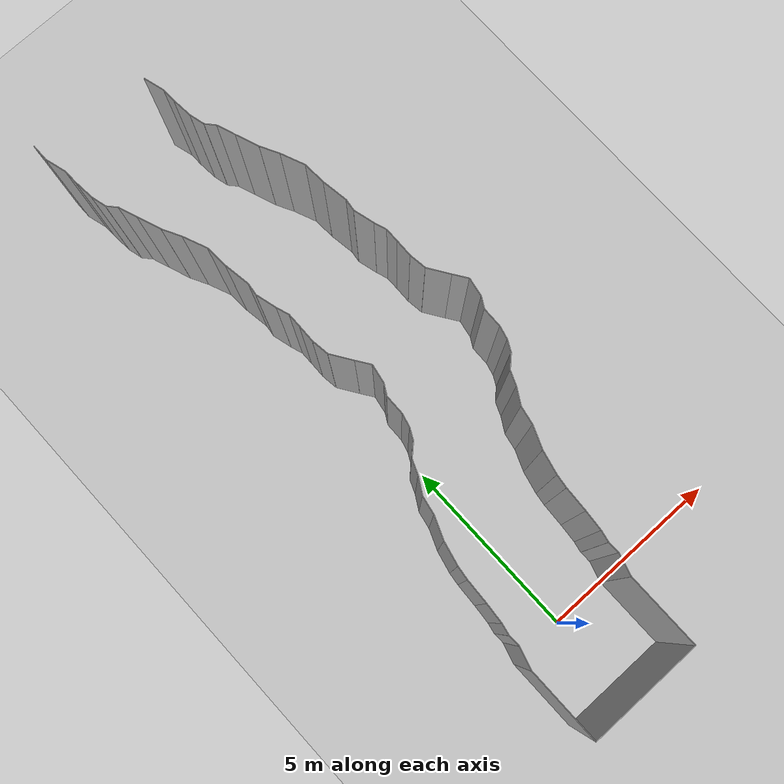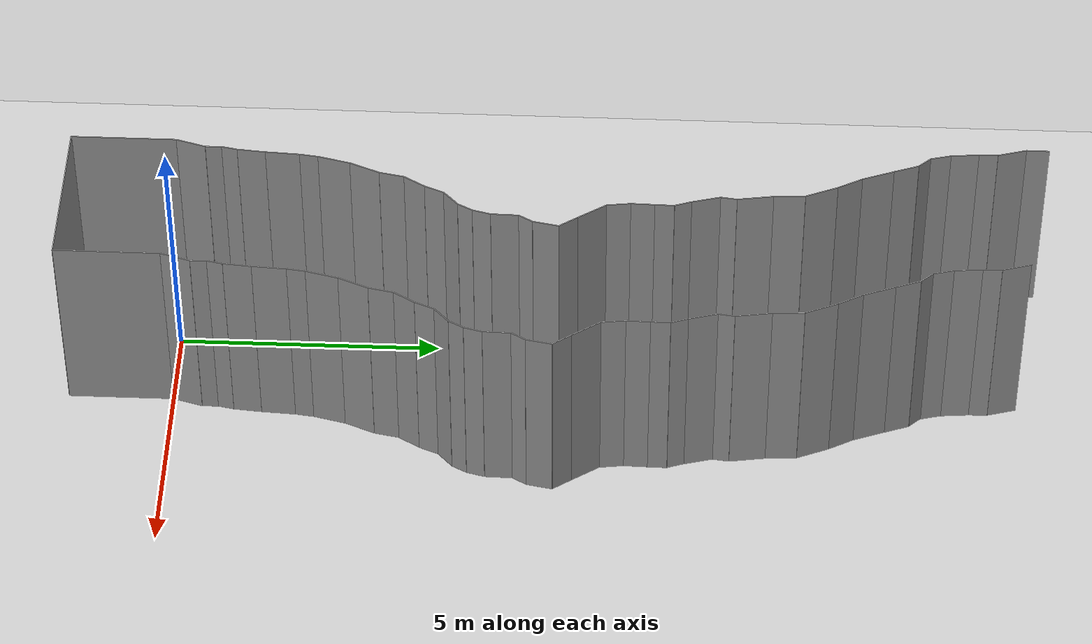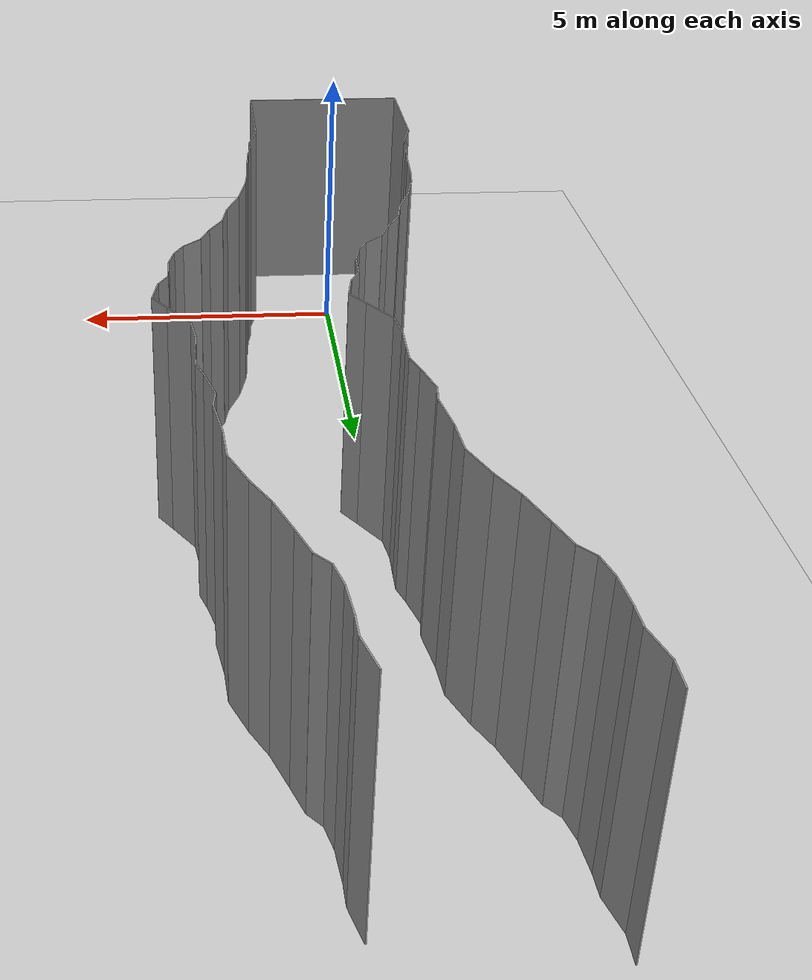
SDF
<sdf version="1.6">
 <world name="default">
  <model name="ground_plane">
   <static>1</static>
   <link name="link">
    <collision name="collision">
     <geometry><plane><normal>0 0 1</normal><size>200 200</size></plane></geometry>
     <surface><friction><ode><mu>100</mu><mu2>50</mu2></ode></friction></surface>
    </collision>
    <visual name="visual">
     <cast_shadows>0</cast_shadows>
     <geometry><plane><normal>0 0 1</normal><size>200 200</size></plane></geometry>
     <material>
      <script><uri>file://media/materials/scripts/gazebo.material</uri><name>Gazebo/Grey</name></script>
     </material>
    </visual>
   </link>
   <pose>0 100 0 0 -0 0</pose>
  </model>
  <model name="wall_back">
   <static>1</static>
   <pose>0.0 -2 2 0.0 0 0.0</pose>
   <link name="link">
    <collision name="collision"><geometry><box><size>3 0.02 4</size></box></geometry></collision>
    <visual name="visual">
     <material>
      <script><name>Gazebo/Grey</name><uri>file://media/materials/scripts/gazebo.material</uri></script>
     </material>
     <geometry><box><size>3 0.02 4</size></box></geometry>
    </visual>
   </link>
  </model>
  <model name="wall_left">
   <static>1</static>
   <pose>1.5 -1 2 0 0 0.00</pose>
   <link name="link">
    <collision name="collision"><geometry><box><size>0.02 2 4</size></box></geometry></collision>
    <visual name="visual">
     <material>
      <script><name>Gazebo/Grey</name><uri>file://media/materials/scripts/gazebo.material</uri></script>
     </material>
     <geometry><box><size>0.02 2 4</size></box></geometry>
    </visual>
   </link>
  </model>
  <model name="wall_right">
   <static>1</static>
   <pose>-1.5 -1 2 0 0 0.00</pose>
   <link name="link">
    <collision name="collision"><geometry><box><size>0.02 2 4</size></box></geometry></collision>
    <visual name="visual">
     <material>
      <script><name>Gazebo/Grey</name><uri>file://media/materials/scripts/gazebo.material</uri></script>
     </material>
     <geometry><box><size>0.02 2 4</size></box></geometry>
    </visual>
   </link>
  </model>
  <model name="wall_0">
   <static>1</static>
   <pose>-1.418720931866029 0.2836292645019407 2 0 0 -0.2790887543441646</pose>
   <link name="link">
    <collision name="collision"><geometry><box><size>0.02 0.590090998402 4</size></box></geometry></collision>
    <visual name="visual">
     <material>
      <script><name>Gazebo/Grey</name><uri>file://media/materials/scripts/gazebo.material</uri></script>
     </material>
     <geometry><box><size>0.02 0.590090998402 4</size></box></geometry>
    </visual>
   </link>
  </model>
  <model name="wall_1">
   <static>1</static>
   <pose>1.581279068133971 0.2836292645019407 2 0 0 -0.2790887543441646</pose>
   <link name="link">
    <collision name="collision"><geometry><box><size>0.02 0.590090998402 4</size></box></geometry></collision>
    <visual name="visual">
     <material>
      <script><name>Gazebo/Grey</name><uri>file://media/materials/scripts/gazebo.material</uri></script>
     </material>
     <geometry><box><size>0.02 0.590090998402 4</size></box></geometry>
    </visual>
   </link>
  </model>
  <model name="wall_2">
   <static>1</static>
   <pose>-1.341242303199237 0.7211256952658965 2 0 0 0.0246944621426619</pose>
   <link name="link">
    <collision name="collision"><geometry><box><size>0.02 0.307828187102 4</size></box></geometry></collision>
    <visual name="visual">
     <material>
      <script><name>Gazebo/Grey</name><uri>file://media/materials/scripts/gazebo.material</uri></script>
     </material>
     <geometry><box><size>0.02 0.307828187102 4</size></box></geometry>
    </visual>
   </link>
  </model>
  <model name="wall_3">
   <static>1</static>
   <pose>1.658757696800763 0.7211256952658965 2 0 0 0.0246944621426619</pose>
   <link name="link">
    <collision name="collision"><geometry><box><size>0.02 0.307828187102 4</size></box></geometry></collision>
    <visual name="visual">
     <material>
      <script><name>Gazebo/Grey</name><uri>file://media/materials/scripts/gazebo.material</uri></script>
     </material>
     <geometry><box><size>0.02 0.307828187102 4</size></box></geometry>
    </visual>
   </link>
  </model>
  <model name="wall_4">
   <static>1</static>
   <pose>-1.3144496636133118 1.0261300958018456 2 0 0 -0.19972063417465227</pose>
   <link name="link">
    <collision name="collision"><geometry><box><size>0.02 0.308404929078 4</size></box></geometry></collision>
    <visual name="visual">
     <material>
      <script><name>Gazebo/Grey</name><uri>file://media/materials/scripts/gazebo.material</uri></script>
     </material>
     <geometry><box><size>0.02 0.308404929078 4</size></box></geometry>
    </visual>
   </link>
  </model>
  <model name="wall_5">
   <static>1</static>
   <pose>1.6855503363866882 1.0261300958018456 2 0 0 -0.19972063417465227</pose>
   <link name="link">
    <collision name="collision"><geometry><box><size>0.02 0.308404929078 4</size></box></geometry></collision>
    <visual name="visual">
     <material>
      <script><name>Gazebo/Grey</name><uri>file://media/materials/scripts/gazebo.material</uri></script>
     </material>
     <geometry><box><size>0.02 0.308404929078 4</size></box></geometry>
    </visual>
   </link>
  </model>
  <model name="wall_6">
   <static>1</static>
   <pose>-1.2604508088802011 1.445763980237036 2 0 0 -0.08695362151301869</pose>
   <link name="link">
    <collision name="collision"><geometry><box><size>0.02 0.539029800597 4</size></box></geometry></collision>
    <visual name="visual">
     <material>
      <script><name>Gazebo/Grey</name><uri>file://media/materials/scripts/gazebo.material</uri></script>
     </material>
     <geometry><box><size>0.02 0.539029800597 4</size></box></geometry>
    </visual>
   </link>
  </model>
  <model name="wall_7">
   <static>1</static>
   <pose>1.7395491911197989 1.445763980237036 2 0 0 -0.08695362151301869</pose>
   <link name="link">
    <collision name="collision"><geometry><box><size>0.02 0.539029800597 4</size></box></geometry></collision>
    <visual name="visual">
     <material>
      <script><name>Gazebo/Grey</name><uri>file://media/materials/scripts/gazebo.material</uri></script>
     </material>
     <geometry><box><size>0.02 0.539029800597 4</size></box></geometry>
    </visual>
   </link>
  </model>
  <model name="wall_8">
   <static>1</static>
   <pose>-1.2187104476934287 2.040100968171722 2 0 0 -0.05620934549464021</pose>
   <link name="link">
    <collision name="collision"><geometry><box><size>0.02 0.652711522025 4</size></box></geometry></collision>
    <visual name="visual">
     <material>
      <script><name>Gazebo/Grey</name><uri>file://media/materials/scripts/gazebo.material</uri></script>
     </material>
     <geometry><box><size>0.02 0.652711522025 4</size></box></geometry>
    </visual>
   </link>
  </model>
  <model name="wall_9">
   <static>1</static>
   <pose>1.7812895523065713 2.040100968171722 2 0 0 -0.05620934549464021</pose>
   <link name="link">
    <collision name="collision"><geometry><box><size>0.02 0.652711522025 4</size></box></geometry></collision>
    <visual name="visual">
     <material>
      <script><name>Gazebo/Grey</name><uri>file://media/materials/scripts/gazebo.material</uri></script>
     </material>
     <geometry><box><size>0.02 0.652711522025 4</size></box></geometry>
    </visual>
   </link>
  </model>
  <model name="wall_10">
   <static>1</static>
   <pose>-1.1776914019775158 2.542547777089179 2 0 0 -0.12774689212215662</pose>
   <link name="link">
    <collision name="collision"><geometry><box><size>0.02 0.356114758947 4</size></box></geometry></collision>
    <visual name="visual">
     <material>
      <script><name>Gazebo/Grey</name><uri>file://media/materials/scripts/gazebo.material</uri></script>
     </material>
     <geometry><box><size>0.02 0.356114758947 4</size></box></geometry>
    </visual>
   </link>
  </model>
  <model name="wall_11">
   <static>1</static>
   <pose>1.8223085980224842 2.542547777089179 2 0 0 -0.12774689212215662</pose>
   <link name="link">
    <collision name="collision"><geometry><box><size>0.02 0.356114758947 4</size></box></geometry></collision>
    <visual name="visual">
     <material>
      <script><name>Gazebo/Grey</name><uri>file://media/materials/scripts/gazebo.material</uri></script>
     </material>
     <geometry><box><size>0.02 0.356114758947 4</size></box></geometry>
    </visual>
   </link>
  </model>
  <model name="wall_12">
   <static>1</static>
   <pose>-1.081717537705951 3.026090564731109 2 0 0 -0.23438848789214636</pose>
   <link name="link">
    <collision name="collision"><geometry><box><size>0.02 0.631129904641 4</size></box></geometry></collision>
    <visual name="visual">
     <material>
      <script><name>Gazebo/Grey</name><uri>file://media/materials/scripts/gazebo.material</uri></script>
     </material>
     <geometry><box><size>0.02 0.631129904641 4</size></box></geometry>
    </visual>
   </link>
  </model>
  <model name="wall_13">
   <static>1</static>
   <pose>1.918282462294049 3.026090564731109 2 0 0 -0.23438848789214636</pose>
   <link name="link">
    <collision name="collision"><geometry><box><size>0.02 0.631129904641 4</size></box></geometry></collision>
    <visual name="visual">
     <material>
      <script><name>Gazebo/Grey</name><uri>file://media/materials/scripts/gazebo.material</uri></script>
     </material>
     <geometry><box><size>0.02 0.631129904641 4</size></box></geometry>
    </visual>
   </link>
  </model>
  <model name="wall_14">
   <static>1</static>
   <pose>-0.8934936141048421 3.618917026474115 2 0 0 -0.3822494433582523</pose>
   <link name="link">
    <collision name="collision"><geometry><box><size>0.02 0.616256826104 4</size></box></geometry></collision>
    <visual name="visual">
     <material>
      <script><name>Gazebo/Grey</name><uri>file://media/materials/scripts/gazebo.material</uri></script>
     </material>
     <geometry><box><size>0.02 0.616256826104 4</size></box></geometry>
    </visual>
   </link>
  </model>
  <model name="wall_15">
   <static>1</static>
   <pose>2.106506385895158 3.618917026474115 2 0 0 -0.3822494433582523</pose>
   <link name="link">
    <collision name="collision"><geometry><box><size>0.02 0.616256826104 4</size></box></geometry></collision>
    <visual name="visual">
     <material>
      <script><name>Gazebo/Grey</name><uri>file://media/materials/scripts/gazebo.material</uri></script>
     </material>
     <geometry><box><size>0.02 0.616256826104 4</size></box></geometry>
    </visual>
   </link>
  </model>
  <model name="wall_16">
   <static>1</static>
   <pose>-0.7320691048712408 4.14168421204616 2 0 0 -0.19379887287974368</pose>
   <link name="link">
    <collision name="collision"><geometry><box><size>0.02 0.482792093456 4</size></box></geometry></collision>
    <visual name="visual">
     <material>
      <script><name>Gazebo/Grey</name><uri>file://media/materials/scripts/gazebo.material</uri></script>
     </material>
     <geometry><box><size>0.02 0.482792093456 4</size></box></geometry>
    </visual>
   </link>
  </model>
  <model name="wall_17">
   <static>1</static>
   <pose>2.2679308951287593 4.14168421204616 2 0 0 -0.19379887287974368</pose>
   <link name="link">
    <collision name="collision"><geometry><box><size>0.02 0.482792093456 4</size></box></geometry></collision>
    <visual name="visual">
     <material>
      <script><name>Gazebo/Grey</name><uri>file://media/materials/scripts/gazebo.material</uri></script>
     </material>
     <geometry><box><size>0.02 0.482792093456 4</size></box></geometry>
    </visual>
   </link>
  </model>
  <model name="wall_18">
   <static>1</static>
   <pose>-0.5679835542274407 4.57950595588926 2 0 0 -0.5294761476932589</pose>
   <link name="link">
    <collision name="collision"><geometry><box><size>0.02 0.465650039519 4</size></box></geometry></collision>
    <visual name="visual">
     <material>
      <script><name>Gazebo/Grey</name><uri>file://media/materials/scripts/gazebo.material</uri></script>
     </material>
     <geometry><box><size>0.02 0.465650039519 4</size></box></geometry>
    </visual>
   </link>
  </model>
  <model name="wall_19">
   <static>1</static>
   <pose>2.4320164457725593 4.57950595588926 2 0 0 -0.5294761476932589</pose>
   <link name="link">
    <collision name="collision"><geometry><box><size>0.02 0.465650039519 4</size></box></geometry></collision>
    <visual name="visual">
     <material>
      <script><name>Gazebo/Grey</name><uri>file://media/materials/scripts/gazebo.material</uri></script>
     </material>
     <geometry><box><size>0.02 0.465650039519 4</size></box></geometry>
    </visual>
   </link>
  </model>
  <model name="wall_20">
   <static>1</static>
   <pose>-0.37465027299519155 4.964957302089884 2 0 0 -0.3895147349980935</pose>
   <link name="link">
    <collision name="collision"><geometry><box><size>0.02 0.398892985491 4</size></box></geometry></collision>
    <visual name="visual">
     <material>
      <script><name>Gazebo/Grey</name><uri>file://media/materials/scripts/gazebo.material</uri></script>
     </material>
     <geometry><box><size>0.02 0.398892985491 4</size></box></geometry>
    </visual>
   </link>
  </model>
  <model name="wall_21">
   <static>1</static>
   <pose>2.6253497270048083 4.964957302089884 2 0 0 -0.3895147349980935</pose>
   <link name="link">
    <collision name="collision"><geometry><box><size>0.02 0.398892985491 4</size></box></geometry></collision>
    <visual name="visual">
     <material>
      <script><name>Gazebo/Grey</name><uri>file://media/materials/scripts/gazebo.material</uri></script>
     </material>
     <geometry><box><size>0.02 0.398892985491 4</size></box></geometry>
    </visual>
   </link>
  </model>
  <model name="wall_22">
   <static>1</static>
   <pose>-0.1516064225014584 5.28943249200379 2 0 0 -0.8109346569040694</pose>
   <link name="link">
    <collision name="collision"><geometry><box><size>0.02 0.406400247102 4</size></box></geometry></collision>
    <visual name="visual">
     <material>
      <script><name>Gazebo/Grey</name><uri>file://media/materials/scripts/gazebo.material</uri></script>
     </material>
     <geometry><box><size>0.02 0.406400247102 4</size></box></geometry>
    </visual>
   </link>
  </model>
  <model name="wall_23">
   <static>1</static>
   <pose>2.8483935774985416 5.28943249200379 2 0 0 -0.8109346569040694</pose>
   <link name="link">
    <collision name="collision"><geometry><box><size>0.02 0.406400247102 4</size></box></geometry></collision>
    <visual name="visual">
     <material>
      <script><name>Gazebo/Grey</name><uri>file://media/materials/scripts/gazebo.material</uri></script>
     </material>
     <geometry><box><size>0.02 0.406400247102 4</size></box></geometry>
    </visual>
   </link>
  </model>
  <model name="wall_24">
   <static>1</static>
   <pose>0.06868012121094381 5.569758428065945 2 0 0 -0.479488846273843</pose>
   <link name="link">
    <collision name="collision"><geometry><box><size>0.02 0.316394294227 4</size></box></geometry></collision>
    <visual name="visual">
     <material>
      <script><name>Gazebo/Grey</name><uri>file://media/materials/scripts/gazebo.material</uri></script>
     </material>
     <geometry><box><size>0.02 0.316394294227 4</size></box></geometry>
    </visual>
   </link>
  </model>
  <model name="wall_25">
   <static>1</static>
   <pose>3.068680121210944 5.569758428065945 2 0 0 -0.479488846273843</pose>
   <link name="link">
    <collision name="collision"><geometry><box><size>0.02 0.316394294227 4</size></box></geometry></collision>
    <visual name="visual">
     <material>
      <script><name>Gazebo/Grey</name><uri>file://media/materials/scripts/gazebo.material</uri></script>
     </material>
     <geometry><box><size>0.02 0.316394294227 4</size></box></geometry>
    </visual>
   </link>
  </model>
  <model name="wall_26">
   <static>1</static>
   <pose>0.18593630339768286 5.882404439084906 2 0 0 -0.2515428638181696</pose>
   <link name="link">
    <collision name="collision"><geometry><box><size>0.02 0.355773596701 4</size></box></geometry></collision>
    <visual name="visual">
     <material>
      <script><name>Gazebo/Grey</name><uri>file://media/materials/scripts/gazebo.material</uri></script>
     </material>
     <geometry><box><size>0.02 0.355773596701 4</size></box></geometry>
    </visual>
   </link>
  </model>
  <model name="wall_27">
   <static>1</static>
   <pose>3.185936303397683 5.882404439084906 2 0 0 -0.2515428638181696</pose>
   <link name="link">
    <collision name="collision"><geometry><box><size>0.02 0.355773596701 4</size></box></geometry></collision>
    <visual name="visual">
     <material>
      <script><name>Gazebo/Grey</name><uri>file://media/materials/scripts/gazebo.material</uri></script>
     </material>
     <geometry><box><size>0.02 0.355773596701 4</size></box></geometry>
    </visual>
   </link>
  </model>
  <model name="wall_28">
   <static>1</static>
   <pose>0.2360720560894651 6.31762503841502 2 0 0 -0.022283383387591334</pose>
   <link name="link">
    <collision name="collision"><geometry><box><size>0.02 0.525994539962 4</size></box></geometry></collision>
    <visual name="visual">
     <material>
      <script><name>Gazebo/Grey</name><uri>file://media/materials/scripts/gazebo.material</uri></script>
     </material>
     <geometry><box><size>0.02 0.525994539962 4</size></box></geometry>
    </visual>
   </link>
  </model>
  <model name="wall_29">
   <static>1</static>
   <pose>3.236072056089465 6.31762503841502 2 0 0 -0.022283383387591334</pose>
   <link name="link">
    <collision name="collision"><geometry><box><size>0.02 0.525994539962 4</size></box></geometry></collision>
    <visual name="visual">
     <material>
      <script><name>Gazebo/Grey</name><uri>file://media/materials/scripts/gazebo.material</uri></script>
     </material>
     <geometry><box><size>0.02 0.525994539962 4</size></box></geometry>
    </visual>
   </link>
  </model>
  <model name="wall_30">
   <static>1</static>
   <pose>0.3186466332601202 6.714820561646917 2 0 0 -0.5191043784049728</pose>
   <link name="link">
    <collision name="collision"><geometry><box><size>0.02 0.309269000143 4</size></box></geometry></collision>
    <visual name="visual">
     <material>
      <script><name>Gazebo/Grey</name><uri>file://media/materials/scripts/gazebo.material</uri></script>
     </material>
     <geometry><box><size>0.02 0.309269000143 4</size></box></geometry>
    </visual>
   </link>
  </model>
  <model name="wall_31">
   <static>1</static>
   <pose>3.31864663326012 6.714820561646917 2 0 0 -0.5191043784049728</pose>
   <link name="link">
    <collision name="collision"><geometry><box><size>0.02 0.309269000143 4</size></box></geometry></collision>
    <visual name="visual">
     <material>
      <script><name>Gazebo/Grey</name><uri>file://media/materials/scripts/gazebo.material</uri></script>
     </material>
     <geometry><box><size>0.02 0.309269000143 4</size></box></geometry>
    </visual>
   </link>
  </model>
  <model name="wall_32">
   <static>1</static>
   <pose>0.44110680840713734 7.094676948190866 2 0 0 -0.18415553824389494</pose>
   <link name="link">
    <collision name="collision"><geometry><box><size>0.02 0.499633872167 4</size></box></geometry></collision>
    <visual name="visual">
     <material>
      <script><name>Gazebo/Grey</name><uri>file://media/materials/scripts/gazebo.material</uri></script>
     </material>
     <geometry><box><size>0.02 0.499633872167 4</size></box></geometry>
    </visual>
   </link>
  </model>
  <model name="wall_33">
   <static>1</static>
   <pose>3.4411068084071372 7.094676948190866 2 0 0 -0.18415553824389494</pose>
   <link name="link">
    <collision name="collision"><geometry><box><size>0.02 0.499633872167 4</size></box></geometry></collision>
    <visual name="visual">
     <material>
      <script><name>Gazebo/Grey</name><uri>file://media/materials/scripts/gazebo.material</uri></script>
     </material>
     <geometry><box><size>0.02 0.499633872167 4</size></box></geometry>
    </visual>
   </link>
  </model>
  <model name="wall_34">
   <static>1</static>
   <pose>0.3710584632864408 7.511072558477766 2 0 0 0.5957662532528709</pose>
   <link name="link">
    <collision name="collision"><geometry><box><size>0.02 0.412707255745 4</size></box></geometry></collision>
    <visual name="visual">
     <material>
      <script><name>Gazebo/Grey</name><uri>file://media/materials/scripts/gazebo.material</uri></script>
     </material>
     <geometry><box><size>0.02 0.412707255745 4</size></box></geometry>
    </visual>
   </link>
  </model>
  <model name="wall_35">
   <static>1</static>
   <pose>3.371058463286441 7.511072558477766 2 0 0 0.5957662532528709</pose>
   <link name="link">
    <collision name="collision"><geometry><box><size>0.02 0.412707255745 4</size></box></geometry></collision>
    <visual name="visual">
     <material>
      <script><name>Gazebo/Grey</name><uri>file://media/materials/scripts/gazebo.material</uri></script>
     </material>
     <geometry><box><size>0.02 0.412707255745 4</size></box></geometry>
    </visual>
   </link>
  </model>
  <model name="wall_36">
   <static>1</static>
   <pose>0.08198783122872388 7.944110765561193 2 0 0 0.5839075725368912</pose>
   <link name="link">
    <collision name="collision"><geometry><box><size>0.02 0.628624660765 4</size></box></geometry></collision>
    <visual name="visual">
     <material>
      <script><name>Gazebo/Grey</name><uri>file://media/materials/scripts/gazebo.material</uri></script>
     </material>
     <geometry><box><size>0.02 0.628624660765 4</size></box></geometry>
    </visual>
   </link>
  </model>
  <model name="wall_37">
   <static>1</static>
   <pose>3.081987831228724 7.944110765561193 2 0 0 0.5839075725368912</pose>
   <link name="link">
    <collision name="collision"><geometry><box><size>0.02 0.628624660765 4</size></box></geometry></collision>
    <visual name="visual">
     <material>
      <script><name>Gazebo/Grey</name><uri>file://media/materials/scripts/gazebo.material</uri></script>
     </material>
     <geometry><box><size>0.02 0.628624660765 4</size></box></geometry>
    </visual>
   </link>
  </model>
  <model name="wall_38">
   <static>1</static>
   <pose>-0.1208942620142476 8.43280307115103 2 0 0 0.12999576550273212</pose>
   <link name="link">
    <collision name="collision"><geometry><box><size>0.02 0.456767740686 4</size></box></geometry></collision>
    <visual name="visual">
     <material>
      <script><name>Gazebo/Grey</name><uri>file://media/materials/scripts/gazebo.material</uri></script>
     </material>
     <geometry><box><size>0.02 0.456767740686 4</size></box></geometry>
    </visual>
   </link>
  </model>
  <model name="wall_39">
   <static>1</static>
   <pose>2.8791057379857525 8.43280307115103 2 0 0 0.12999576550273212</pose>
   <link name="link">
    <collision name="collision"><geometry><box><size>0.02 0.456767740686 4</size></box></geometry></collision>
    <visual name="visual">
     <material>
      <script><name>Gazebo/Grey</name><uri>file://media/materials/scripts/gazebo.material</uri></script>
     </material>
     <geometry><box><size>0.02 0.456767740686 4</size></box></geometry>
    </visual>
   </link>
  </model>
  <model name="wall_40">
   <static>1</static>
   <pose>-0.14470207770703444 8.884663603209559 2 0 0 -0.02571517482845136</pose>
   <link name="link">
    <collision name="collision"><geometry><box><size>0.02 0.450956421251 4</size></box></geometry></collision>
    <visual name="visual">
     <material>
      <script><name>Gazebo/Grey</name><uri>file://media/materials/scripts/gazebo.material</uri></script>
     </material>
     <geometry><box><size>0.02 0.450956421251 4</size></box></geometry>
    </visual>
   </link>
  </model>
  <model name="wall_41">
   <static>1</static>
   <pose>2.8552979222929658 8.884663603209559 2 0 0 -0.02571517482845136</pose>
   <link name="link">
    <collision name="collision"><geometry><box><size>0.02 0.450956421251 4</size></box></geometry></collision>
    <visual name="visual">
     <material>
      <script><name>Gazebo/Grey</name><uri>file://media/materials/scripts/gazebo.material</uri></script>
     </material>
     <geometry><box><size>0.02 0.450956421251 4</size></box></geometry>
    </visual>
   </link>
  </model>
  <model name="wall_42">
   <static>1</static>
   <pose>-0.1361101137045613 9.293618188733076 2 0 0 -0.015222890307738816</pose>
   <link name="link">
    <collision name="collision"><geometry><box><size>0.02 0.36714438314 4</size></box></geometry></collision>
    <visual name="visual">
     <material>
      <script><name>Gazebo/Grey</name><uri>file://media/materials/scripts/gazebo.material</uri></script>
     </material>
     <geometry><box><size>0.02 0.36714438314 4</size></box></geometry>
    </visual>
   </link>
  </model>
  <model name="wall_43">
   <static>1</static>
   <pose>2.8638898862954387 9.293618188733076 2 0 0 -0.015222890307738816</pose>
   <link name="link">
    <collision name="collision"><geometry><box><size>0.02 0.36714438314 4</size></box></geometry></collision>
    <visual name="visual">
     <material>
      <script><name>Gazebo/Grey</name><uri>file://media/materials/scripts/gazebo.material</uri></script>
     </material>
     <geometry><box><size>0.02 0.36714438314 4</size></box></geometry>
    </visual>
   </link>
  </model>
  <model name="wall_44">
   <static>1</static>
   <pose>-0.18750570676299488 9.636265953010334 2 0 0 0.32828524645726165</pose>
   <link name="link">
    <collision name="collision"><geometry><box><size>0.02 0.336144966952 4</size></box></geometry></collision>
    <visual name="visual">
     <material>
      <script><name>Gazebo/Grey</name><uri>file://media/materials/scripts/gazebo.material</uri></script>
     </material>
     <geometry><box><size>0.02 0.336144966952 4</size></box></geometry>
    </visual>
   </link>
  </model>
  <model name="wall_45">
   <static>1</static>
   <pose>2.812494293237005 9.636265953010334 2 0 0 0.32828524645726165</pose>
   <link name="link">
    <collision name="collision"><geometry><box><size>0.02 0.336144966952 4</size></box></geometry></collision>
    <visual name="visual">
     <material>
      <script><name>Gazebo/Grey</name><uri>file://media/materials/scripts/gazebo.material</uri></script>
     </material>
     <geometry><box><size>0.02 0.336144966952 4</size></box></geometry>
    </visual>
   </link>
  </model>
  <model name="wall_46">
   <static>1</static>
   <pose>-0.3135103133396091 10.06570339823949 2 0 0 0.25964828594055106</pose>
   <link name="link">
    <collision name="collision"><geometry><box><size>0.02 0.559433218344 4</size></box></geometry></collision>
    <visual name="visual">
     <material>
      <script><name>Gazebo/Grey</name><uri>file://media/materials/scripts/gazebo.material</uri></script>
     </material>
     <geometry><box><size>0.02 0.559433218344 4</size></box></geometry>
    </visual>
   </link>
  </model>
  <model name="wall_47">
   <static>1</static>
   <pose>2.6864896866603907 10.06570339823949 2 0 0 0.25964828594055106</pose>
   <link name="link">
    <collision name="collision"><geometry><box><size>0.02 0.559433218344 4</size></box></geometry></collision>
    <visual name="visual">
     <material>
      <script><name>Gazebo/Grey</name><uri>file://media/materials/scripts/gazebo.material</uri></script>
     </material>
     <geometry><box><size>0.02 0.559433218344 4</size></box></geometry>
    </visual>
   </link>
  </model>
  <model name="wall_48">
   <static>1</static>
   <pose>-0.3648416316606976 10.490997387663707 2 0 0 -0.13142810103255845</pose>
   <link name="link">
    <collision name="collision"><geometry><box><size>0.02 0.31260273687 4</size></box></geometry></collision>
    <visual name="visual">
     <material>
      <script><name>Gazebo/Grey</name><uri>file://media/materials/scripts/gazebo.material</uri></script>
     </material>
     <geometry><box><size>0.02 0.31260273687 4</size></box></geometry>
    </visual>
   </link>
  </model>
  <model name="wall_49">
   <static>1</static>
   <pose>2.6351583683393023 10.490997387663707 2 0 0 -0.13142810103255845</pose>
   <link name="link">
    <collision name="collision"><geometry><box><size>0.02 0.31260273687 4</size></box></geometry></collision>
    <visual name="visual">
     <material>
      <script><name>Gazebo/Grey</name><uri>file://media/materials/scripts/gazebo.material</uri></script>
     </material>
     <geometry><box><size>0.02 0.31260273687 4</size></box></geometry>
    </visual>
   </link>
  </model>
  <model name="wall_50">
   <static>1</static>
   <pose>-0.39534904962786294 10.987076728889372 2 0 0 0.14837909782722633</pose>
   <link name="link">
    <collision name="collision"><geometry><box><size>0.02 0.689831778268 4</size></box></geometry></collision>
    <visual name="visual">
     <material>
      <script><name>Gazebo/Grey</name><uri>file://media/materials/scripts/gazebo.material</uri></script>
     </material>
     <geometry><box><size>0.02 0.689831778268 4</size></box></geometry>
    </visual>
   </link>
  </model>
  <model name="wall_51">
   <static>1</static>
   <pose>2.604650950372137 10.987076728889372 2 0 0 0.14837909782722633</pose>
   <link name="link">
    <collision name="collision"><geometry><box><size>0.02 0.689831778268 4</size></box></geometry></collision>
    <visual name="visual">
     <material>
      <script><name>Gazebo/Grey</name><uri>file://media/materials/scripts/gazebo.material</uri></script>
     </material>
     <geometry><box><size>0.02 0.689831778268 4</size></box></geometry>
    </visual>
   </link>
  </model>
  <model name="wall_52">
   <static>1</static>
   <pose>-0.46240392430929694 11.625128169785427 2 0 0 0.05404893801058919</pose>
   <link name="link">
    <collision name="collision"><geometry><box><size>0.02 0.594719434515 4</size></box></geometry></collision>
    <visual name="visual">
     <material>
      <script><name>Gazebo/Grey</name><uri>file://media/materials/scripts/gazebo.material</uri></script>
     </material>
     <geometry><box><size>0.02 0.594719434515 4</size></box></geometry>
    </visual>
   </link>
  </model>
  <model name="wall_53">
   <static>1</static>
   <pose>2.5375960756907032 11.625128169785427 2 0 0 0.05404893801058919</pose>
   <link name="link">
    <collision name="collision"><geometry><box><size>0.02 0.594719434515 4</size></box></geometry></collision>
    <visual name="visual">
     <material>
      <script><name>Gazebo/Grey</name><uri>file://media/materials/scripts/gazebo.material</uri></script>
     </material>
     <geometry><box><size>0.02 0.594719434515 4</size></box></geometry>
    </visual>
   </link>
  </model>
  <model name="wall_54">
   <static>1</static>
   <pose>-0.6039016225179614 12.224220617842919 2 0 0 0.39346686974307066</pose>
   <link name="link">
    <collision name="collision"><geometry><box><size>0.02 0.654334614815 4</size></box></geometry></collision>
    <visual name="visual">
     <material>
      <script><name>Gazebo/Grey</name><uri>file://media/materials/scripts/gazebo.material</uri></script>
     </material>
     <geometry><box><size>0.02 0.654334614815 4</size></box></geometry>
    </visual>
   </link>
  </model>
  <model name="wall_55">
   <static>1</static>
   <pose>2.396098377482039 12.224220617842919 2 0 0 0.39346686974307066</pose>
   <link name="link">
    <collision name="collision"><geometry><box><size>0.02 0.654334614815 4</size></box></geometry></collision>
    <visual name="visual">
     <material>
      <script><name>Gazebo/Grey</name><uri>file://media/materials/scripts/gazebo.material</uri></script>
     </material>
     <geometry><box><size>0.02 0.654334614815 4</size></box></geometry>
    </visual>
   </link>
  </model>
  <model name="wall_56">
   <static>1</static>
   <pose>-0.8513352987660092 12.756994384910215 2 0 0 0.4866084925481789</pose>
   <link name="link">
    <collision name="collision"><geometry><box><size>0.02 0.521779764378 4</size></box></geometry></collision>
    <visual name="visual">
     <material>
      <script><name>Gazebo/Grey</name><uri>file://media/materials/scripts/gazebo.material</uri></script>
     </material>
     <geometry><box><size>0.02 0.521779764378 4</size></box></geometry>
    </visual>
   </link>
  </model>
  <model name="wall_57">
   <static>1</static>
   <pose>2.148664701233991 12.756994384910215 2 0 0 0.4866084925481789</pose>
   <link name="link">
    <collision name="collision"><geometry><box><size>0.02 0.521779764378 4</size></box></geometry></collision>
    <visual name="visual">
     <material>
      <script><name>Gazebo/Grey</name><uri>file://media/materials/scripts/gazebo.material</uri></script>
     </material>
     <geometry><box><size>0.02 0.521779764378 4</size></box></geometry>
    </visual>
   </link>
  </model>
  <model name="wall_58">
   <static>1</static>
   <pose>-1.0849468537975955 13.286036519430688 2 0 0 0.3578837072870549</pose>
   <link name="link">
    <collision name="collision"><geometry><box><size>0.02 0.637246437981 4</size></box></geometry></collision>
    <visual name="visual">
     <material>
      <script><name>Gazebo/Grey</name><uri>file://media/materials/scripts/gazebo.material</uri></script>
     </material>
     <geometry><box><size>0.02 0.637246437981 4</size></box></geometry>
    </visual>
   </link>
  </model>
  <model name="wall_59">
   <static>1</static>
   <pose>1.9150531462024045 13.286036519430688 2 0 0 0.3578837072870549</pose>
   <link name="link">
    <collision name="collision"><geometry><box><size>0.02 0.637246437981 4</size></box></geometry></collision>
    <visual name="visual">
     <material>
      <script><name>Gazebo/Grey</name><uri>file://media/materials/scripts/gazebo.material</uri></script>
     </material>
     <geometry><box><size>0.02 0.637246437981 4</size></box></geometry>
    </visual>
   </link>
  </model>
  <model name="wall_60">
   <static>1</static>
   <pose>-1.280596533734518 13.817601756969735 2 0 0 0.3459788750249272</pose>
   <link name="link">
    <collision name="collision"><geometry><box><size>0.02 0.495628823316 4</size></box></geometry></collision>
    <visual name="visual">
     <material>
      <script><name>Gazebo/Grey</name><uri>file://media/materials/scripts/gazebo.material</uri></script>
     </material>
     <geometry><box><size>0.02 0.495628823316 4</size></box></geometry>
    </visual>
   </link>
  </model>
  <model name="wall_61">
   <static>1</static>
   <pose>1.719403466265482 13.817601756969735 2 0 0 0.3459788750249272</pose>
   <link name="link">
    <collision name="collision"><geometry><box><size>0.02 0.495628823316 4</size></box></geometry></collision>
    <visual name="visual">
     <material>
      <script><name>Gazebo/Grey</name><uri>file://media/materials/scripts/gazebo.material</uri></script>
     </material>
     <geometry><box><size>0.02 0.495628823316 4</size></box></geometry>
    </visual>
   </link>
  </model>
  <model name="wall_62">
   <static>1</static>
   <pose>-1.465410064922379 14.163779508664936 2 0 0 0.7280651762045668</pose>
   <link name="link">
    <collision name="collision"><geometry><box><size>0.02 0.302889227254 4</size></box></geometry></collision>
    <visual name="visual">
     <material>
      <script><name>Gazebo/Grey</name><uri>file://media/materials/scripts/gazebo.material</uri></script>
     </material>
     <geometry><box><size>0.02 0.302889227254 4</size></box></geometry>
    </visual>
   </link>
  </model>
  <model name="wall_63">
   <static>1</static>
   <pose>1.534589935077621 14.163779508664936 2 0 0 0.7280651762045668</pose>
   <link name="link">
    <collision name="collision"><geometry><box><size>0.02 0.302889227254 4</size></box></geometry></collision>
    <visual name="visual">
     <material>
      <script><name>Gazebo/Grey</name><uri>file://media/materials/scripts/gazebo.material</uri></script>
     </material>
     <geometry><box><size>0.02 0.302889227254 4</size></box></geometry>
    </visual>
   </link>
  </model>
  <model name="wall_64">
   <static>1</static>
   <pose>-1.6151352466515068 14.470949554867856 2 0 0 0.24701081937816363</pose>
   <link name="link">
    <collision name="collision"><geometry><box><size>0.02 0.400397417509 4</size></box></geometry></collision>
    <visual name="visual">
     <material>
      <script><name>Gazebo/Grey</name><uri>file://media/materials/scripts/gazebo.material</uri></script>
     </material>
     <geometry><box><size>0.02 0.400397417509 4</size></box></geometry>
    </visual>
   </link>
  </model>
  <model name="wall_65">
   <static>1</static>
   <pose>1.3848647533484932 14.470949554867856 2 0 0 0.24701081937816363</pose>
   <link name="link">
    <collision name="collision"><geometry><box><size>0.02 0.400397417509 4</size></box></geometry></collision>
    <visual name="visual">
     <material>
      <script><name>Gazebo/Grey</name><uri>file://media/materials/scripts/gazebo.material</uri></script>
     </material>
     <geometry><box><size>0.02 0.400397417509 4</size></box></geometry>
    </visual>
   </link>
  </model>
  <model name="wall_66">
   <static>1</static>
   <pose>-1.6870073452869347 14.930448475773918 2 0 0 0.08616219275630066</pose>
   <link name="link">
    <collision name="collision"><geometry><box><size>0.02 0.532729685182 4</size></box></geometry></collision>
    <visual name="visual">
     <material>
      <script><name>Gazebo/Grey</name><uri>file://media/materials/scripts/gazebo.material</uri></script>
     </material>
     <geometry><box><size>0.02 0.532729685182 4</size></box></geometry>
    </visual>
   </link>
  </model>
  <model name="wall_67">
   <static>1</static>
   <pose>1.3129926547130653 14.930448475773918 2 0 0 0.08616219275630066</pose>
   <link name="link">
    <collision name="collision"><geometry><box><size>0.02 0.532729685182 4</size></box></geometry></collision>
    <visual name="visual">
     <material>
      <script><name>Gazebo/Grey</name><uri>file://media/materials/scripts/gazebo.material</uri></script>
     </material>
     <geometry><box><size>0.02 0.532729685182 4</size></box></geometry>
    </visual>
   </link>
  </model>
  <model name="wall_68">
   <static>1</static>
   <pose>-1.7127930988483557 15.374504505395269 2 0 0 0.016024889436070906</pose>
   <link name="link">
    <collision name="collision"><geometry><box><size>0.02 0.357404512419 4</size></box></geometry></collision>
    <visual name="visual">
     <material>
      <script><name>Gazebo/Grey</name><uri>file://media/materials/scripts/gazebo.material</uri></script>
     </material>
     <geometry><box><size>0.02 0.357404512419 4</size></box></geometry>
    </visual>
   </link>
  </model>
  <model name="wall_69">
   <static>1</static>
   <pose>1.2872069011516443 15.374504505395269 2 0 0 0.016024889436070906</pose>
   <link name="link">
    <collision name="collision"><geometry><box><size>0.02 0.357404512419 4</size></box></geometry></collision>
    <visual name="visual">
     <material>
      <script><name>Gazebo/Grey</name><uri>file://media/materials/scripts/gazebo.material</uri></script>
     </material>
     <geometry><box><size>0.02 0.357404512419 4</size></box></geometry>
    </visual>
   </link>
  </model>
  <model name="wall_70">
   <static>1</static>
   <pose>-1.7919898284809006 15.823410433434017 2 0 0 0.27530539285445566</pose>
   <link name="link">
    <collision name="collision"><geometry><box><size>0.02 0.561601911744 4</size></box></geometry></collision>
    <visual name="visual">
     <material>
      <script><name>Gazebo/Grey</name><uri>file://media/materials/scripts/gazebo.material</uri></script>
     </material>
     <geometry><box><size>0.02 0.561601911744 4</size></box></geometry>
    </visual>
   </link>
  </model>
  <model name="wall_71">
   <static>1</static>
   <pose>1.2080101715190994 15.823410433434017 2 0 0 0.27530539285445566</pose>
   <link name="link">
    <collision name="collision"><geometry><box><size>0.02 0.561601911744 4</size></box></geometry></collision>
    <visual name="visual">
     <material>
      <script><name>Gazebo/Grey</name><uri>file://media/materials/scripts/gazebo.material</uri></script>
     </material>
     <geometry><box><size>0.02 0.561601911744 4</size></box></geometry>
    </visual>
   </link>
  </model>
  <model name="wall_72">
   <static>1</static>
   <pose>-1.866602926774589 16.312448302352205 2 0 0 -0.007860814081408462</pose>
   <link name="link">
    <collision name="collision"><geometry><box><size>0.02 0.437636026162 4</size></box></geometry></collision>
    <visual name="visual">
     <material>
      <script><name>Gazebo/Grey</name><uri>file://media/materials/scripts/gazebo.material</uri></script>
     </material>
     <geometry><box><size>0.02 0.437636026162 4</size></box></geometry>
    </visual>
   </link>
  </model>
 </world>
</sdf>
